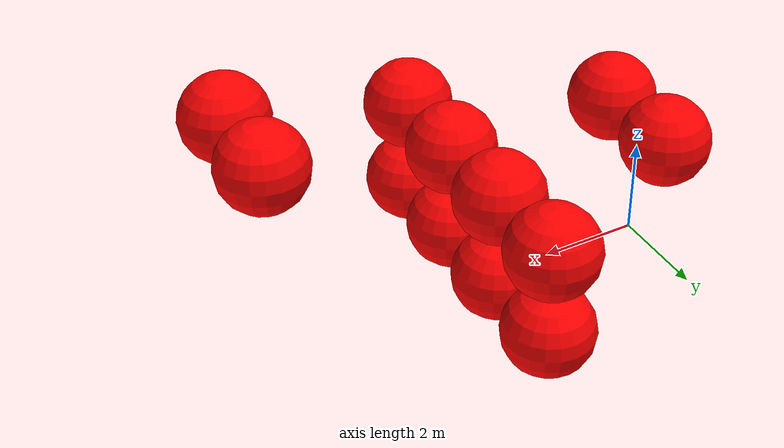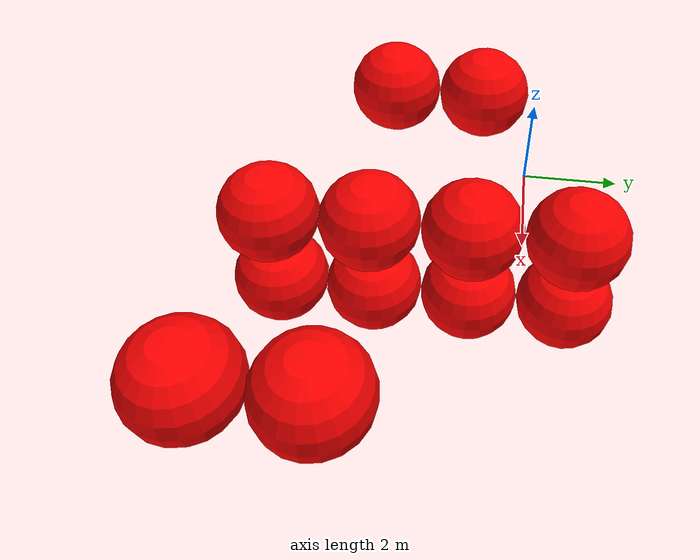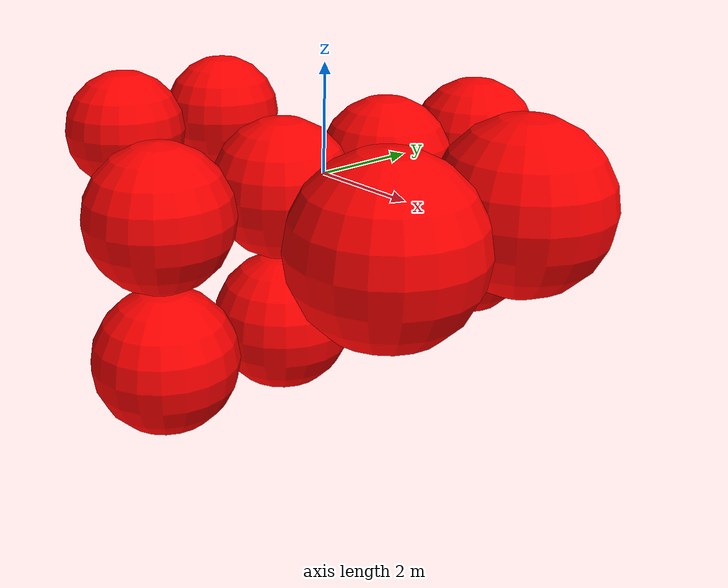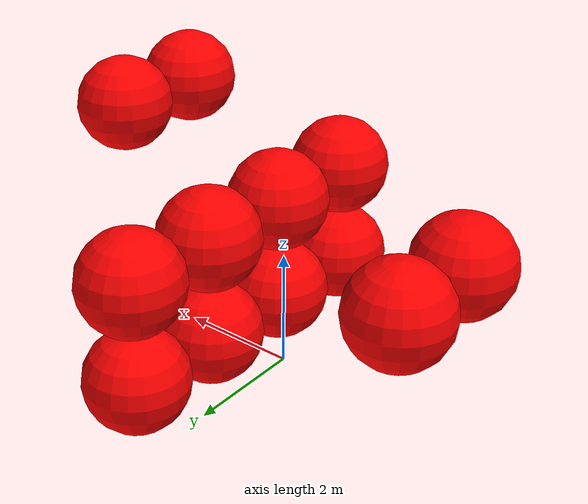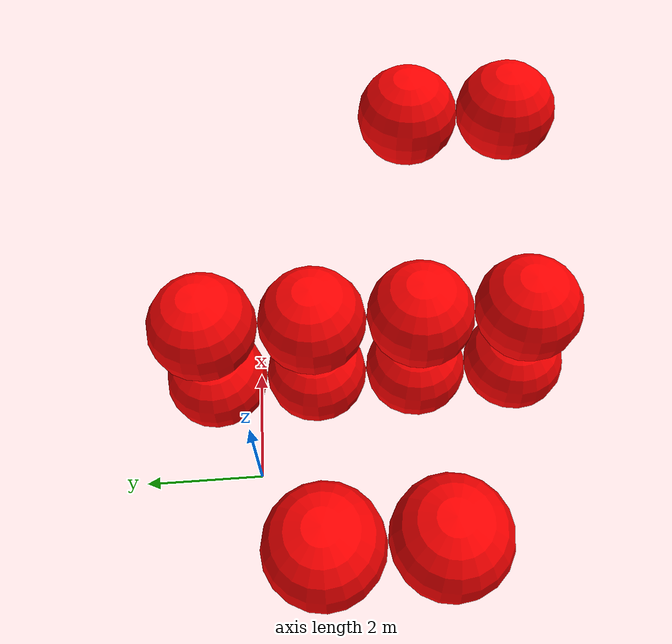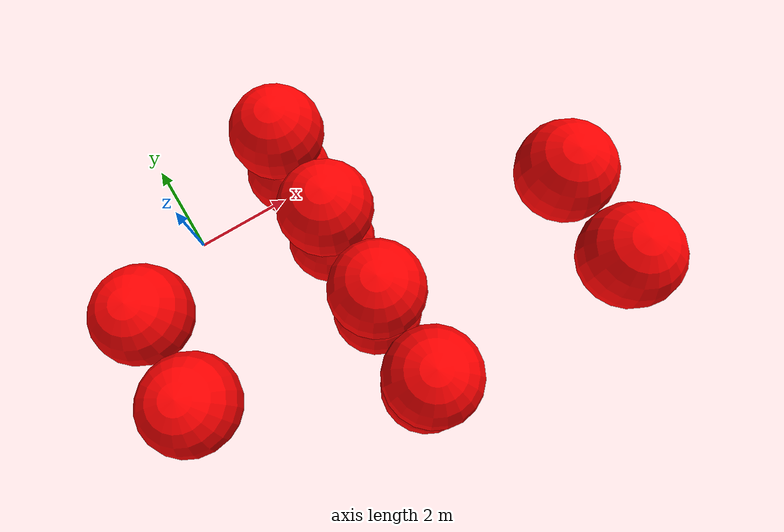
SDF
<sdf version="1.8">
 <world name="3d_world">
  <model name="obstacle_1" canonical_link="obstacle">
   <static>true</static>
   <pose relative_to="world">2.54 -5.01 -1.00 0 0 0</pose>
   <link name="obstacle">
    <pose relative_to="__model__">0.0 0 0.0 0 0 0</pose>
    <visual name="visual">
     <geometry><sphere><radius>1.00</radius></sphere></geometry>
     <material>
      <ambient>1.0 0.0 0.0 1</ambient>
      <diffuse>1.0 0.0 0.0 1</diffuse>
      <specular>1.0 0.0 0.0 1</specular>
     </material>
    </visual>
    <collision name="collision"><geometry><sphere><radius>1.00</radius></sphere></geometry></collision>
    <enable_gravity>false</enable_gravity>
   </link>
   <plugin filename="ignition-gazebo-velocity-control-system" name="ignition::gazebo::systems::VelocityControl">
    <initial_linear>0.00 0.00 0.00</initial_linear>
    <initial_angular>0 0 0</initial_angular>
   </plugin>
   <plugin filename="ignition-gazebo-odometry-publisher-system" name="ignition::gazebo::systems::OdometryPublisher">
    <dimensions>3</dimensions>
   </plugin>
  </model>
  <model name="obstacle_2" canonical_link="obstacle">
   <static>true</static>
   <pose relative_to="world">2.54 -3.01 -1.00 0 0 0</pose>
   <link name="obstacle">
    <pose relative_to="__model__">0.0 0 0.0 0 0 0</pose>
    <visual name="visual">
     <geometry><sphere><radius>1.00</radius></sphere></geometry>
     <material>
      <ambient>1.0 0.0 0.0 1</ambient>
      <diffuse>1.0 0.0 0.0 1</diffuse>
      <specular>1.0 0.0 0.0 1</specular>
     </material>
    </visual>
    <collision name="collision"><geometry><sphere><radius>1.00</radius></sphere></geometry></collision>
    <enable_gravity>false</enable_gravity>
   </link>
   <plugin filename="ignition-gazebo-velocity-control-system" name="ignition::gazebo::systems::VelocityControl">
    <initial_linear>0.00 0.00 0.00</initial_linear>
    <initial_angular>0 0 0</initial_angular>
   </plugin>
   <plugin filename="ignition-gazebo-odometry-publisher-system" name="ignition::gazebo::systems::OdometryPublisher">
    <dimensions>3</dimensions>
   </plugin>
  </model>
  <model name="obstacle_3" canonical_link="obstacle">
   <static>true</static>
   <pose relative_to="world">2.54 -1.01 -1.00 0 0 0</pose>
   <link name="obstacle">
    <pose relative_to="__model__">0.0 0 0.0 0 0 0</pose>
    <visual name="visual">
     <geometry><sphere><radius>1.00</radius></sphere></geometry>
     <material>
      <ambient>1.0 0.0 0.0 1</ambient>
      <diffuse>1.0 0.0 0.0 1</diffuse>
      <specular>1.0 0.0 0.0 1</specular>
     </material>
    </visual>
    <collision name="collision"><geometry><sphere><radius>1.00</radius></sphere></geometry></collision>
    <enable_gravity>false</enable_gravity>
   </link>
   <plugin filename="ignition-gazebo-velocity-control-system" name="ignition::gazebo::systems::VelocityControl">
    <initial_linear>0.00 0.00 0.00</initial_linear>
    <initial_angular>0 0 0</initial_angular>
   </plugin>
   <plugin filename="ignition-gazebo-odometry-publisher-system" name="ignition::gazebo::systems::OdometryPublisher">
    <dimensions>3</dimensions>
   </plugin>
  </model>
  <model name="obstacle_4" canonical_link="obstacle">
   <static>true</static>
   <pose relative_to="world">2.54 0.99 -1.00 0 0 0</pose>
   <link name="obstacle">
    <pose relative_to="__model__">0.0 0 0.0 0 0 0</pose>
    <visual name="visual">
     <geometry><sphere><radius>1.00</radius></sphere></geometry>
     <material>
      <ambient>1.0 0.0 0.0 1</ambient>
      <diffuse>1.0 0.0 0.0 1</diffuse>
      <specular>1.0 0.0 0.0 1</specular>
     </material>
    </visual>
    <collision name="collision"><geometry><sphere><radius>1.00</radius></sphere></geometry></collision>
    <enable_gravity>false</enable_gravity>
   </link>
   <plugin filename="ignition-gazebo-velocity-control-system" name="ignition::gazebo::systems::VelocityControl">
    <initial_linear>0.00 0.00 0.00</initial_linear>
    <initial_angular>0 0 0</initial_angular>
   </plugin>
   <plugin filename="ignition-gazebo-odometry-publisher-system" name="ignition::gazebo::systems::OdometryPublisher">
    <dimensions>3</dimensions>
   </plugin>
  </model>
  <model name="obstacle_5" canonical_link="obstacle">
   <static>true</static>
   <pose relative_to="world">2.54 -5.01 1.00 0 0 0</pose>
   <link name="obstacle">
    <pose relative_to="__model__">0.0 0 0.0 0 0 0</pose>
    <visual name="visual">
     <geometry><sphere><radius>1.00</radius></sphere></geometry>
     <material>
      <ambient>1.0 0.0 0.0 1</ambient>
      <diffuse>1.0 0.0 0.0 1</diffuse>
      <specular>1.0 0.0 0.0 1</specular>
     </material>
    </visual>
    <collision name="collision"><geometry><sphere><radius>1.00</radius></sphere></geometry></collision>
    <enable_gravity>false</enable_gravity>
   </link>
   <plugin filename="ignition-gazebo-velocity-control-system" name="ignition::gazebo::systems::VelocityControl">
    <initial_linear>0.00 0.00 0.00</initial_linear>
    <initial_angular>0 0 0</initial_angular>
   </plugin>
   <plugin filename="ignition-gazebo-odometry-publisher-system" name="ignition::gazebo::systems::OdometryPublisher">
    <dimensions>3</dimensions>
   </plugin>
  </model>
  <model name="obstacle_6" canonical_link="obstacle">
   <static>true</static>
   <pose relative_to="world">2.54 -3.01 1.00 0 0 0</pose>
   <link name="obstacle">
    <pose relative_to="__model__">0.0 0 0.0 0 0 0</pose>
    <visual name="visual">
     <geometry><sphere><radius>1.00</radius></sphere></geometry>
     <material>
      <ambient>1.0 0.0 0.0 1</ambient>
      <diffuse>1.0 0.0 0.0 1</diffuse>
      <specular>1.0 0.0 0.0 1</specular>
     </material>
    </visual>
    <collision name="collision"><geometry><sphere><radius>1.00</radius></sphere></geometry></collision>
    <enable_gravity>false</enable_gravity>
   </link>
   <plugin filename="ignition-gazebo-velocity-control-system" name="ignition::gazebo::systems::VelocityControl">
    <initial_linear>0.00 0.00 0.00</initial_linear>
    <initial_angular>0 0 0</initial_angular>
   </plugin>
   <plugin filename="ignition-gazebo-odometry-publisher-system" name="ignition::gazebo::systems::OdometryPublisher">
    <dimensions>3</dimensions>
   </plugin>
  </model>
  <model name="obstacle_7" canonical_link="obstacle">
   <static>true</static>
   <pose relative_to="world">2.54 -1.01 1.00 0 0 0</pose>
   <link name="obstacle">
    <pose relative_to="__model__">0.0 0 0.0 0 0 0</pose>
    <visual name="visual">
     <geometry><sphere><radius>1.00</radius></sphere></geometry>
     <material>
      <ambient>1.0 0.0 0.0 1</ambient>
      <diffuse>1.0 0.0 0.0 1</diffuse>
      <specular>1.0 0.0 0.0 1</specular>
     </material>
    </visual>
    <collision name="collision"><geometry><sphere><radius>1.00</radius></sphere></geometry></collision>
    <enable_gravity>false</enable_gravity>
   </link>
   <plugin filename="ignition-gazebo-velocity-control-system" name="ignition::gazebo::systems::VelocityControl">
    <initial_linear>0.00 0.00 0.00</initial_linear>
    <initial_angular>0 0 0</initial_angular>
   </plugin>
   <plugin filename="ignition-gazebo-odometry-publisher-system" name="ignition::gazebo::systems::OdometryPublisher">
    <dimensions>3</dimensions>
   </plugin>
  </model>
  <model name="obstacle_8" canonical_link="obstacle">
   <static>true</static>
   <pose relative_to="world">2.54 0.99 1.00 0 0 0</pose>
   <link name="obstacle">
    <pose relative_to="__model__">0.0 0 0.0 0 0 0</pose>
    <visual name="visual">
     <geometry><sphere><radius>1.00</radius></sphere></geometry>
     <material>
      <ambient>1.0 0.0 0.0 1</ambient>
      <diffuse>1.0 0.0 0.0 1</diffuse>
      <specular>1.0 0.0 0.0 1</specular>
     </material>
    </visual>
    <collision name="collision"><geometry><sphere><radius>1.00</radius></sphere></geometry></collision>
    <enable_gravity>false</enable_gravity>
   </link>
   <plugin filename="ignition-gazebo-velocity-control-system" name="ignition::gazebo::systems::VelocityControl">
    <initial_linear>0.00 0.00 0.00</initial_linear>
    <initial_angular>0 0 0</initial_angular>
   </plugin>
   <plugin filename="ignition-gazebo-odometry-publisher-system" name="ignition::gazebo::systems::OdometryPublisher">
    <dimensions>3</dimensions>
   </plugin>
  </model>
  <model name="obstacle_19" canonical_link="obstacle">
   <static>true</static>
   <pose relative_to="world">-1.58 -3.05 1.00 0 0 0</pose>
   <link name="obstacle">
    <pose relative_to="__model__">0.0 0 0.0 0 0 0</pose>
    <visual name="visual">
     <geometry><sphere><radius>1.00</radius></sphere></geometry>
     <material>
      <ambient>1.0 0.0 0.0 1</ambient>
      <diffuse>1.0 0.0 0.0 1</diffuse>
      <specular>1.0 0.0 0.0 1</specular>
     </material>
    </visual>
    <collision name="collision"><geometry><sphere><radius>1.00</radius></sphere></geometry></collision>
    <enable_gravity>false</enable_gravity>
   </link>
   <plugin filename="ignition-gazebo-velocity-control-system" name="ignition::gazebo::systems::VelocityControl">
    <initial_linear>0.00 0.00 0.00</initial_linear>
    <initial_angular>0 0 0</initial_angular>
   </plugin>
   <plugin filename="ignition-gazebo-odometry-publisher-system" name="ignition::gazebo::systems::OdometryPublisher">
    <dimensions>3</dimensions>
   </plugin>
  </model>
  <model name="obstacle_20" canonical_link="obstacle">
   <static>true</static>
   <pose relative_to="world">-1.58 -1.05 1.00 0 0 0</pose>
   <link name="obstacle">
    <pose relative_to="__model__">0.0 0 0.0 0 0 0</pose>
    <visual name="visual">
     <geometry><sphere><radius>1.00</radius></sphere></geometry>
     <material>
      <ambient>1.0 0.0 0.0 1</ambient>
      <diffuse>1.0 0.0 0.0 1</diffuse>
      <specular>1.0 0.0 0.0 1</specular>
     </material>
    </visual>
    <collision name="collision"><geometry><sphere><radius>1.00</radius></sphere></geometry></collision>
    <enable_gravity>false</enable_gravity>
   </link>
   <plugin filename="ignition-gazebo-velocity-control-system" name="ignition::gazebo::systems::VelocityControl">
    <initial_linear>0.00 0.00 0.00</initial_linear>
    <initial_angular>0 0 0</initial_angular>
   </plugin>
   <plugin filename="ignition-gazebo-odometry-publisher-system" name="ignition::gazebo::systems::OdometryPublisher">
    <dimensions>3</dimensions>
   </plugin>
  </model>
  <model name="obstacle_21" canonical_link="obstacle">
   <static>false</static>
   <pose relative_to="world">6.74 -5.13 1.86 0 0 0</pose>
   <link name="obstacle">
    <pose relative_to="__model__">0.0 0 0.0 0 0 0</pose>
    <visual name="visual">
     <geometry><sphere><radius>1.00</radius></sphere></geometry>
     <material>
      <ambient>1.0 0.0 0.0 1</ambient>
      <diffuse>1.0 0.0 0.0 1</diffuse>
      <specular>1.0 0.0 0.0 1</specular>
     </material>
    </visual>
    <collision name="collision"><geometry><sphere><radius>1.00</radius></sphere></geometry></collision>
    <enable_gravity>false</enable_gravity>
   </link>
   <plugin filename="ignition-gazebo-velocity-control-system" name="ignition::gazebo::systems::VelocityControl">
    <initial_linear>0.00 1.60 -0.69</initial_linear>
    <initial_angular>0 0 0</initial_angular>
   </plugin>
   <plugin filename="ignition-gazebo-odometry-publisher-system" name="ignition::gazebo::systems::OdometryPublisher">
    <dimensions>3</dimensions>
   </plugin>
  </model>
  <model name="obstacle_22" canonical_link="obstacle">
   <static>false</static>
   <pose relative_to="world">6.74 -3.13 1.86 0 0 0</pose>
   <link name="obstacle">
    <pose relative_to="__model__">0.0 0 0.0 0 0 0</pose>
    <visual name="visual">
     <geometry><sphere><radius>1.00</radius></sphere></geometry>
     <material>
      <ambient>1.0 0.0 0.0 1</ambient>
      <diffuse>1.0 0.0 0.0 1</diffuse>
      <specular>1.0 0.0 0.0 1</specular>
     </material>
    </visual>
    <collision name="collision"><geometry><sphere><radius>1.00</radius></sphere></geometry></collision>
    <enable_gravity>false</enable_gravity>
   </link>
   <plugin filename="ignition-gazebo-velocity-control-system" name="ignition::gazebo::systems::VelocityControl">
    <initial_linear>0.00 1.60 -0.69</initial_linear>
    <initial_angular>0 0 0</initial_angular>
   </plugin>
   <plugin filename="ignition-gazebo-odometry-publisher-system" name="ignition::gazebo::systems::OdometryPublisher">
    <dimensions>3</dimensions>
   </plugin>
  </model>
 </world>
</sdf>
